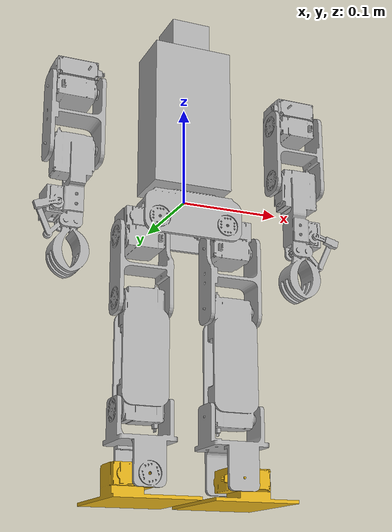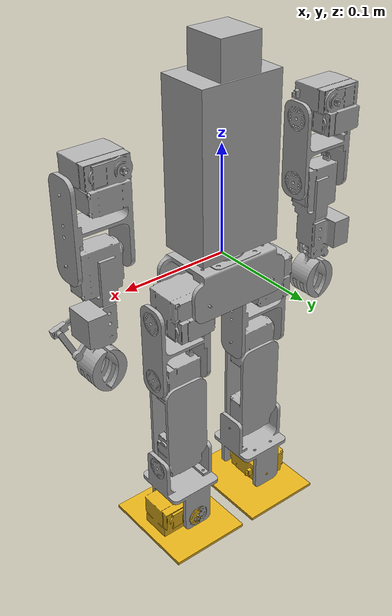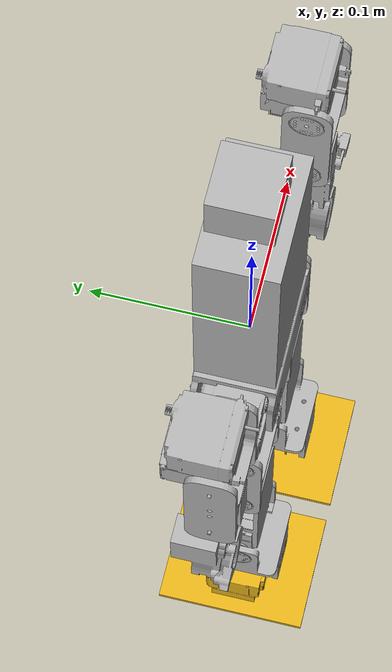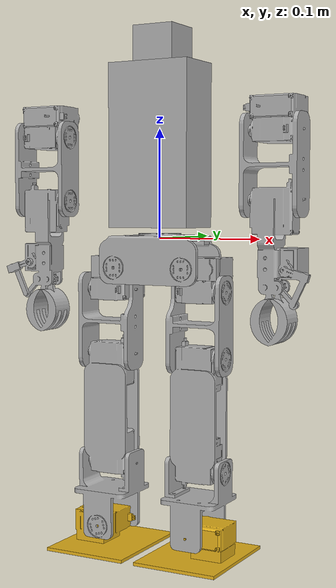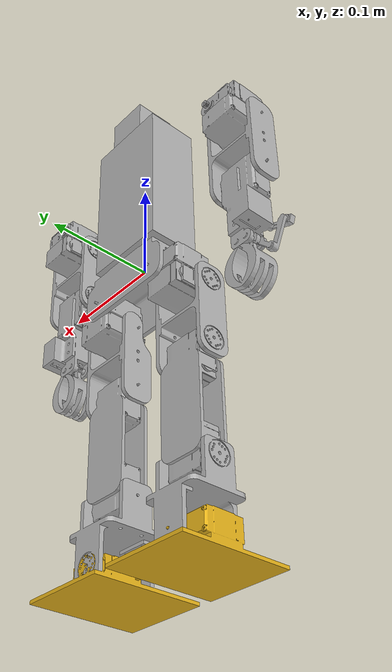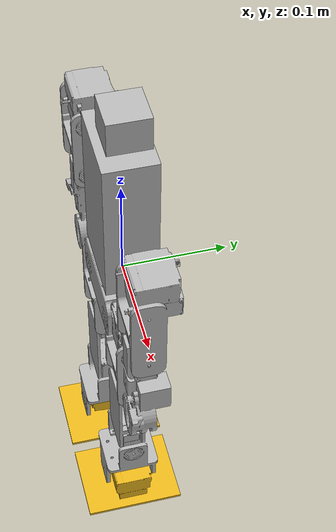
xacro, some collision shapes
<?xml version="1.0"?>
<robot name="robot_humanoid" xmlns:xacro="http://www.ros.org/wiki/xacro">

  <xacro:include filename="$(find ros2_pkg)/urdf/humanoid_physics.xacro" />

  <xacro:macro name="turbo_link" params="name mesh_file mass ixx ixy ixz iyy iyz izz size xyz rpy mu_val:=1.0">
    <link name="${name}">
      <inertial>
        <origin xyz="0 0 0" rpy="0 0 0" />
        <mass value="${mass}" />
        <inertia ixx="${ixx}" ixy="${ixy}" ixz="${ixz}" iyy="${iyy}" iyz="${iyz}" izz="${izz}" />
      </inertial>

      <visual>
        <origin xyz="0 0 0" rpy="0 0 0" />
        <geometry>
          <mesh filename="package://ros2_pkg/urdf/meshes/${mesh_file}" />
        </geometry>
        <material name="">
          <color rgba="0.7 0.7 0.7 1" />
        </material>
      </visual>

      <collision>
        <origin xyz="${xyz}" rpy="${rpy}" />
        <geometry>
          <box size="${size}" />
        </geometry>
        <surface>
          <friction>
            <ode>
              <mu>${mu_val}</mu>
              <mu2>${mu_val}</mu2>
              <kp>${petg_kp}</kp> <kd>${petg_kd}</kd>
            </ode>
          </friction>
        </surface>
      </collision>
    </link>
  </xacro:macro>

  <xacro:turbo_link name="base_link" mesh_file="base_link.STL"
    mass="0.0505669" ixx="1.585e-05" ixy="-6.321e-12" ixz="3.060e-11" iyy="3.953e-05" iyz="-3.073e-06" izz="3.988e-05"
    size="0.1 0.05 0.05" xyz="0 0 -0.01" rpy="0 0 0" />

  <xacro:turbo_link name="base_hip_middle_link" mesh_file="base_hip_middle_link.STL"
    mass="0.3190303" ixx="0.0004755" ixy="-2.146e-07" ixz="-2.408e-08" iyy="0.0008352" iyz="4.645e-07" izz="0.0005132"
    size="0.08 0.05 0.15" xyz="0 0 0.08" rpy="0 0 0" />

  <xacro:turbo_link name="hip_head_link" mesh_file="hip_head_link.STL"
    mass="0.1143471" ixx="2.400e-05" ixy="1.049e-10" ixz="-9.674e-09" iyy="2.959e-05" iyz="8.148e-08" izz="2.516e-05"
    size="0.08 0.08 0.08" xyz="0 0 0" rpy="0 0 0" />

  <xacro:turbo_link name="base_hip_left_link" mesh_file="base_hip_left_link.STL"
    mass="0.107894" ixx="1.748e-05" ixy="-5.426e-11" ixz="-3.522e-22" iyy="2.777e-05" iyz="-1.556e-10" izz="1.748e-05"
    size="0.04 0.04 0.04" xyz="0 0 0" rpy="0 0 0" />

  <xacro:turbo_link name="hip_hip_left_link" mesh_file="hip_hip_left_link.STL"
    mass="0.024442" ixx="1.327e-05" ixy="3.643e-07" ixz="4.214e-14" iyy="5.279e-06" iyz="-2.609e-10" izz="1.136e-05"
    size="0.03 0.06 0.03" xyz="0 -0.03 0" rpy="0 0 0" />

  <xacro:turbo_link name="hip_knee_left_link" mesh_file="hip_knee_left_link.STL"
    mass="0.130204" ixx="4.591e-05" ixy="-2.099e-10" ixz="-4.142e-20" iyy="2.028e-05" iyz="-3.819e-21" izz="3.285e-05"
    size="0.04 0.12 0.04" xyz="0 -0.05 0" rpy="0 0 0" />

  <xacro:turbo_link name="knee_ankle_left_link" mesh_file="knee_ankle_left_link.STL"
    mass="0.029851" ixx="9.566e-06" ixy="1.647e-06" ixz="4.489e-07" iyy="1.004e-05" iyz="-1.447e-06" izz="9.639e-06"
    size="0.03 0.10 0.03" xyz="0 -0.05 0" rpy="0 0 0" />

  <link name="ankle_ankle_left_link">
    <inertial>
      <origin xyz="-0.008 -0.007 -0.021" rpy="0 0 0" />
      <mass value="0.085005" />
      <inertia ixx="2.805e-05" ixy="5.987e-07" ixz="-9.674e-09" iyy="4.730e-05" iyz="5.071e-11" izz="2.353e-05" />
    </inertial>
    <visual>
      <origin xyz="0 0 0" rpy="0 0 0" />
      <geometry> <mesh filename="package://ros2_pkg/urdf/meshes/ankle_ankle_left_link.STL" /> </geometry>
      <material name=""><color rgba="0.9 0.7 0.1 1" /></material>
    </visual>
    <collision>
      <origin xyz="0 -0.02 -0.023" rpy="0 0 0" />
      <geometry>
        <box size="0.05 0.08 0.015" />
      </geometry>
      <surface>
        <friction>
          <ode>
            <mu>${silicone_mu}</mu>
            <mu2>${silicone_mu}</mu2>
            <kp>${silicone_kp}</kp>
            <kd>${silicone_kd}</kd>
          </ode>
        </friction>
      </surface>
    </collision>
  </link>

  <xacro:turbo_link name="base_hip_right_link" mesh_file="base_hip_right_link.STL"
    mass="0.107894" ixx="1.748e-05" ixy="5.426e-11" ixz="-5.975e-21" iyy="2.777e-05" iyz="-1.556e-10" izz="1.748e-05"
    size="0.04 0.04 0.04" xyz="0 0 0" rpy="0 0 0" />

  <xacro:turbo_link name="hip_hip_right_link" mesh_file="hip_hip_right_link.STL"
    mass="0.024442" ixx="1.327e-05" ixy="-3.643e-07" ixz="-4.023e-14" iyy="5.279e-06" iyz="2.609e-10" izz="1.136e-05"
    size="0.03 0.06 0.03" xyz="0 -0.03 0" rpy="0 0 0" />

  <xacro:turbo_link name="hip_knee_right_link" mesh_file="hip_knee_right_link.STL"
    mass="0.130204" ixx="4.591e-05" ixy="-2.099e-10" ixz="-4.243e-20" iyy="2.028e-05" iyz="-5.559e-21" izz="3.285e-05"
    size="0.04 0.12 0.04" xyz="0 -0.05 0" rpy="0 0 0" />

  <xacro:turbo_link name="knee_ankle_right_link" mesh_file="knee_ankle_right_link.STL"
    mass="0.029851" ixx="9.566e-06" ixy="1.647e-06" ixz="4.489e-07" iyy="1.004e-05" iyz="-1.447e-06" izz="9.639e-06"
    size="0.03 0.10 0.03" xyz="0 -0.05 0" rpy="0 0 0" />

  <link name="ankle_ankle_right_link">
    <inertial>
      <origin xyz="-0.008 -0.007 -0.022" rpy="0 0 0" />
      <mass value="0.085921" />
      <inertia ixx="2.807e-05" ixy="5.987e-07" ixz="-9.674e-09" iyy="4.732e-05" iyz="5.071e-11" izz="2.358e-05" />
    </inertial>
    <visual>
      <origin xyz="0 0 0" rpy="0 0 0" />
      <geometry> <mesh filename="package://ros2_pkg/urdf/meshes/ankle_ankle_right_link.STL" /> </geometry>
      <material name=""><color rgba="0.9 0.7 0.1 1" /></material>
    </visual>
    <collision>
      <origin xyz="0 -0.02 -0.023" rpy="0 0 0" />
      <geometry> <box size="0.05 0.08 0.015" /> </geometry>
      <surface>
        <friction>
          <ode>
            <mu>${silicone_mu}</mu>
            <mu2>${silicone_mu}</mu2>
            <kp>${silicone_kp}</kp>
            <kd>${silicone_kd}</kd>
          </ode>
        </friction>
      </surface>
    </collision>
  </link>

  <xacro:turbo_link name="hip_shoulder_left_link" mesh_file="hip_shoulder_left_link.STL"
    mass="0.054051" ixx="8.314e-06" ixy="-1.049e-10" ixz="9.674e-09" iyy="1.388e-05" iyz="5.071e-11" izz="9.169e-06"
    size="0.04 0.04 0.04" xyz="0 0 0" rpy="0 0 0" />

  <xacro:turbo_link name="shoulder_shoulder_left_link" mesh_file="shoulder_shoulder_left_link.STL"
    mass="0.079490" ixx="2.283e-05" ixy="1.051e-10" ixz="9.674e-09" iyy="1.930e-05" iyz="2.102e-10" izz="2.192e-05"
    size="0.04 0.04 0.04" xyz="0 0 0" rpy="0 0 0" />

  <xacro:turbo_link name="shoulder_elbow_left_link" mesh_file="shoulder_elbow_left_link.STL"
    mass="0.092212" ixx="2.301e-05" ixy="-1.355e-07" ixz="2.522e-07" iyy="1.153e-05" iyz="-8.002e-08" izz="1.897e-05"
    size="0.03 0.10 0.03" xyz="0 -0.04 0" rpy="0 0 0" />

  <xacro:turbo_link name="hip_shoulder_right_link" mesh_file="hip_shoulder_right_link.STL"
    mass="0.054051" ixx="8.314e-06" ixy="1.049e-10" ixz="-9.674e-09" iyy="1.388e-05" iyz="5.071e-11" izz="9.169e-06"
    size="0.04 0.04 0.04" xyz="0 0 0" rpy="0 0 0" />

  <xacro:turbo_link name="shoulder_shoulder_right_link" mesh_file="shoulder_shoulder_right_link.STL"
    mass="0.079490" ixx="2.283e-05" ixy="1.051e-10" ixz="-9.674e-09" iyy="1.930e-05" iyz="3.116e-10" izz="2.192e-05"
    size="0.04 0.04 0.04" xyz="0 0 0" rpy="0 0 0" />

  <xacro:turbo_link name="shoulder_elbow_right_link" mesh_file="shoulder_elbow_right_link.STL"
    mass="0.092163" ixx="2.298e-05" ixy="-9.310e-08" ixz="-2.271e-07" iyy="1.153e-05" iyz="-8.058e-08" izz="1.894e-05"
    size="0.03 0.10 0.03" xyz="0 -0.04 0" rpy="0 0 0" />

  <joint name="base_hip_left_joint" type="revolute">
    <origin xyz="-0.035 -0.0205 -0.027" rpy="1.5708 0 -3.1416" />
    <parent link="base_link" />
    <child link="base_hip_left_link" />
    <axis xyz="0 0 1" />
    <limit lower="-0.17453" upper="0.69813" effort="1.08" velocity="6.16" />
  </joint>

  <joint name="hip_hip_left_joint" type="revolute">
    <origin xyz="0.0295 -0.0205 0.0105" rpy="0 1.5708 0" />
    <parent link="base_hip_left_link" />
    <child link="hip_hip_left_link" />
    <axis xyz="0 0 -1" />
    <limit lower="-0.8" upper="0.69813" effort="1.08" velocity="6.16" />
  </joint>

  <joint name="hip_knee_left_joint" type="revolute">
    <origin xyz="0 -0.06 0" rpy="0 0 0" />
    <parent link="hip_hip_left_link" />
    <child link="hip_knee_left_link" />
    <axis xyz="0 0 -1" />
    <limit lower="-1.3963" upper="1.3963" effort="1.08" velocity="6.16" />
  </joint>

  <joint name="knee_ankle_left_joint" type="revolute">
    <origin xyz="0 -0.1034 0" rpy="0 0 0" />
    <parent link="hip_knee_left_link" />
    <child link="knee_ankle_left_link" />
    <axis xyz="0 0 -1" />
    <limit lower="-0.8" upper="0.8" effort="1.08" velocity="6.16" />
  </joint>

  <joint name="ankle_ankle_left_joint" type="revolute">
    <origin xyz="0.0215 -0.057 -0.018" rpy="0 1.5708 0" />
    <parent link="knee_ankle_left_link" />
    <child link="ankle_ankle_left_link" />
    <axis xyz="0 0 -1" />
    <limit lower="-1.2217" upper="1.2217" effort="1.08" velocity="6.16" />
  </joint>

  <joint name="base_hip_right_joint" type="revolute">
    <origin xyz="0.035 -0.0205 -0.027" rpy="1.5708 0 0" />
    <parent link="base_link" />
    <child link="base_hip_right_link" />
    <axis xyz="0 0 -1" />
    <limit lower="-0.69813" upper="0.17453" effort="1.08" velocity="6.16" />
  </joint>

  <joint name="hip_hip_right_joint" type="revolute">
    <origin xyz="0.0309 -0.0205 -0.0126" rpy="0 1.5708 0" />
    <parent link="base_hip_right_link" />
    <child link="hip_hip_right_link" />
    <axis xyz="0 0 -1" />
    <limit lower="-0.69813" upper="0.8" effort="1.08" velocity="6.16" />
  </joint>

  <joint name="hip_knee_right_joint" type="revolute">
    <origin xyz="0 -0.06 0" rpy="0 0 0" />
    <parent link="hip_hip_right_link" />
    <child link="hip_knee_right_link" />
    <axis xyz="0 0 -1" />
    <limit lower="-1.3963" upper="1.3963" effort="1.08" velocity="6.16" />
  </joint>

  <joint name="knee_ankle_right_joint" type="revolute">
    <origin xyz="0 -0.1034 0" rpy="0 0 0" />
    <parent link="hip_knee_right_link" />
    <child link="knee_ankle_right_link" />
    <axis xyz="0 0 -1" />
    <limit lower="-0.8" upper="0.8" effort="1.08" velocity="6.16" />
  </joint>

  <joint name="ankle_ankle_right_joint" type="revolute">
    <origin xyz="0.0215 -0.057 -0.0215" rpy="0 1.5708 0" />
    <parent link="knee_ankle_right_link" />
    <child link="ankle_ankle_right_link" />
    <axis xyz="0 0 -1" />
    <limit lower="-1.2217" upper="1.2217" effort="1.08" velocity="6.16" />
  </joint>

  <joint name="base_hip_middle_joint" type="revolute">
    <origin xyz="0 0 0.0048" rpy="0 0 0" />
    <parent link="base_link" />
    <child link="base_hip_middle_link" />
    <axis xyz="0 0 1" />
    <limit lower="-0.5236" upper="0.5236" effort="1.08" velocity="6.16" />
  </joint>

  <joint name="hip_head_joint" type="fixed">
    <origin xyz="0.001 -0.0017 0.1446" rpy="0 0 0" />
    <parent link="base_hip_middle_link" />
    <child link="hip_head_link" />
  </joint>

  <joint name="hip_shoulder_left_joint" type="revolute">
    <origin xyz="-0.108 0.0195 0.1093" rpy="1.5708 0 0" />
    <parent link="base_hip_middle_link" /> <child link="hip_shoulder_left_link" />
    <axis xyz="0 0 1" /> <limit lower="-1.2" upper="0.2" effort="1" velocity="6"/>
  </joint>
  <joint name="shoulder_shoulder_left_joint" type="revolute">
    <origin xyz="-0.015 -0.016 0.03" rpy="0 1.5708 0" />
    <parent link="hip_shoulder_left_link" /> <child link="shoulder_shoulder_left_link" />
    <axis xyz="0 0 -1" /> <limit lower="-1" upper="1" effort="1" velocity="6"/>
  </joint>
  <joint name="shoulder_elbow_left_joint" type="revolute">
    <origin xyz="0 -0.063 0.026" rpy="0 0 0" />
    <parent link="shoulder_shoulder_left_link" /> <child link="shoulder_elbow_left_link" />
    <axis xyz="0 0 -1" /> <limit lower="-1.3" upper="1.3" effort="1" velocity="6"/>
  </joint>

  <joint name="hip_shoulder_right_joint" type="revolute">
    <origin xyz="0.108 0.016 0.1093" rpy="1.5708 0 3.1416" />
    <parent link="base_hip_middle_link" /> <child link="hip_shoulder_right_link" />
    <axis xyz="0 0 -1" /> <limit lower="-0.2" upper="1.2" effort="1" velocity="6"/>
  </joint>
  <joint name="shoulder_shoulder_right_joint" type="revolute">
    <origin xyz="-0.015 -0.016 -0.027" rpy="0 1.5708 0" />
    <parent link="hip_shoulder_right_link" /> <child link="shoulder_shoulder_right_link" />
    <axis xyz="0 0 -1" /> <limit lower="-1" upper="1" effort="1" velocity="6"/>
  </joint>
  <joint name="shoulder_elbow_right_joint" type="revolute">
    <origin xyz="0 -0.063 0.026" rpy="0 0 0" />
    <parent link="shoulder_shoulder_right_link" /> <child link="shoulder_elbow_right_link" />
    <axis xyz="0 0 -1" /> <limit lower="-1.3" upper="1.3" effort="1" velocity="6"/>
  </joint>

  <gazebo reference="base_hip_middle_link">
    <sensor name="imu_sensor" type="imu">
      <always_on>1</always_on>
      <update_rate>100</update_rate>
      <visualize>true</visualize>
      <topic>imu</topic>
    </sensor>
  </gazebo>

  <xacro:robot_brain />

</robot>
